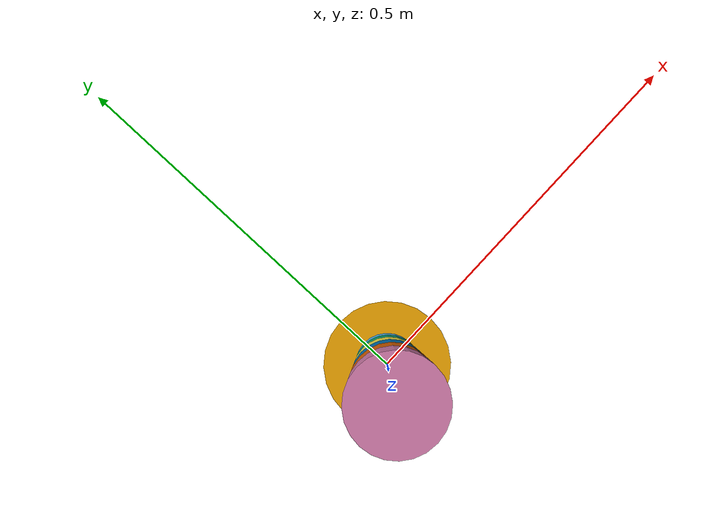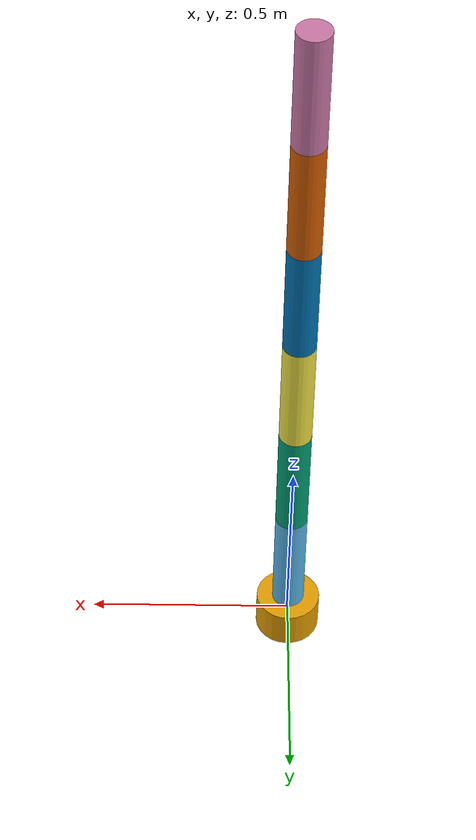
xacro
<?xml version="1.0"?>
<robot name="cobot" xmlns:xacro="http://www.ros.org/wiki/xacro">
  <xacro:property name="link_len" value="0.3"/>
  <xacro:property name="link_radius" value="0.04"/>
  <xacro:property name="joint_effort" value="50.0"/>
  <xacro:property name="joint_velocity" value="2.0"/>

  <link name="base_link">
    <visual>
      <geometry><cylinder radius="0.08" length="0.1"/></geometry>
    </visual>
    <collision>
      <geometry><cylinder radius="0.08" length="0.1"/></geometry>
    </collision>
    <inertial>
      <mass value="2.0"/>
      <inertia ixx="0.01" ixy="0" ixz="0" iyy="0.01" iyz="0" izz="0.01"/>
    </inertial>
  </link>

  <xacro:macro name="arm_segment" params="name parent axis_xyz origin_xyz">
    <link name="${name}_link">
      <visual>
        <origin xyz="0 0 ${link_len/2}"/>
        <geometry><cylinder radius="${link_radius}" length="${link_len}"/></geometry>
      </visual>
      <collision>
        <origin xyz="0 0 ${link_len/2}"/>
        <geometry><cylinder radius="${link_radius}" length="${link_len}"/></geometry>
      </collision>
      <inertial>
        <mass value="1.0"/>
        <inertia ixx="0.005" ixy="0" ixz="0" iyy="0.005" iyz="0" izz="0.002"/>
      </inertial>
    </link>
    <joint name="${name}_joint" type="revolute">
      <parent link="${parent}"/>
      <child link="${name}_link"/>
      <origin xyz="${origin_xyz}"/>
      <axis xyz="${axis_xyz}"/>
      <limit lower="-3.14" upper="3.14" effort="${joint_effort}" velocity="${joint_velocity}"/>
    </joint>
  </xacro:macro>

  <xacro:arm_segment name="joint_1" parent="base_link" axis_xyz="0 0 1" origin_xyz="0 0 0.05"/>
  <xacro:arm_segment name="joint_2" parent="joint_1_link" axis_xyz="0 1 0" origin_xyz="0 0 ${link_len}"/>
  <xacro:arm_segment name="joint_3" parent="joint_2_link" axis_xyz="0 1 0" origin_xyz="0 0 ${link_len}"/>
  <xacro:arm_segment name="joint_4" parent="joint_3_link" axis_xyz="0 0 1" origin_xyz="0 0 ${link_len}"/>
  <xacro:arm_segment name="joint_5" parent="joint_4_link" axis_xyz="0 1 0" origin_xyz="0 0 ${link_len}"/>
  <xacro:arm_segment name="joint_6" parent="joint_5_link" axis_xyz="0 0 1" origin_xyz="0 0 ${link_len}"/>

  <link name="tool0"/>
  <joint name="tool0_fixed" type="fixed">
    <parent link="joint_6_link"/>
    <child link="tool0"/>
    <origin xyz="0 0 ${link_len}"/>
  </joint>

  <gazebo>
    <plugin filename="gz-sim-joint-state-publisher-system"
            name="gz::sim::systems::JointStatePublisher"/>
    <plugin filename="gz-sim-pose-publisher-system"
            name="gz::sim::systems::PosePublisher">
      <publish_link_pose>true</publish_link_pose>
      <update_frequency>50</update_frequency>
    </plugin>
  </gazebo>

  <xacro:include filename="$(find cobot_description)/urdf/cobot.ros2_control.xacro"/>
</robot>
